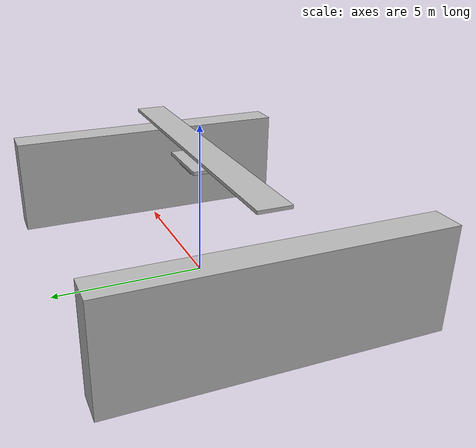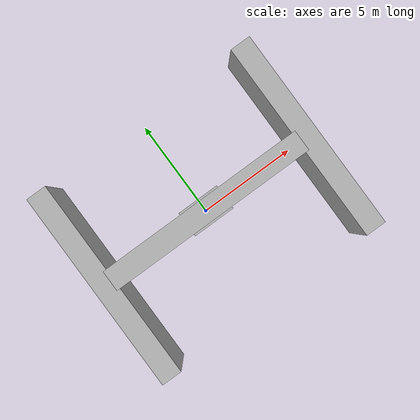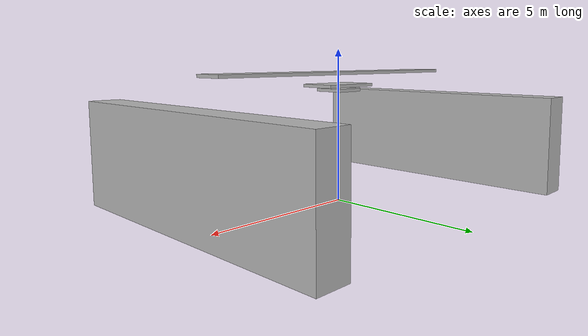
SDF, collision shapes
<?xml version='1.0'?>
<sdf version='1.4'>
  <model name="H_beam">
    <static>false</static>

    <self_collide>true</self_collide>

    <link name="world_fix">
    </link> <!-- I needed to close the link tag -->
    <joint name ="lwb_world" type="fixed">
        <parent>world</parent>
        <child>left_wall_beam</child> <!-- put here the name of the base link -->
    </joint> <!-- close the joint tag -->

    <joint name ="rwb_world" type="fixed">
        <parent>world</parent>
        <child>right_wall_beam</child> <!-- put here the name of the base link -->
    </joint> <!-- close the joint tag -->

    <link name='left_wall_beam'>
      <pose> 5.5 0 0 0 0 0</pose>

      <collision name='collision_lwb'>
        <pose> 0 0 1.75 0 0 0</pose>
        <geometry>
          <box>
            <size> 1 10 3.3 </size>
          </box>
        </geometry>
      </collision>

      <visual name='visual_lwb'>
        <geometry>
          <mesh>
            <uri>model://my_robot/meshes/support_arch_v2.stl</uri>
            <scale>0.001 0.001 0.001</scale>
          </mesh>
        </geometry>
      </visual>
    </link>

    <link name='right_wall_beam'>
      <pose> -5.5 0 0 0 0 0</pose>

      <collision name='collision_rwb'>
        <pose> 0 0 1.75 0 0 0</pose>
        <geometry>
          <box>
            <size> 1 10 3.3 </size>
          </box>
        </geometry>
      </collision>

      <visual name='visual_rwb'>
        <geometry>
          <mesh>
            <uri>model://my_robot/meshes/support_arch_v2.stl</uri>
            <scale>0.001 0.001 0.001</scale>
          </mesh>
        </geometry>
      </visual>
    </link>

    <link name='h_beam'>
      <pose> 0 -0.5 5 0 0 0</pose>

      <collision name='collision_hb'>
        <pose> 0 0.5 -0.75 0 0 0</pose>
        <geometry>
          <box>
            <size> 10 1 0.1 </size>
          </box>
        </geometry>
      </collision>

      <visual name='visual_hb'>
        <geometry>
          <mesh>
            <uri>model://my_robot/meshes/H-Beam_v3.stl</uri>
            <scale>1 1 1</scale>
          </mesh>
        </geometry>
      </visual>
    </link>

    <joint type="prismatic" name="h_beam_hinge">
      <pose>0 0 0 0 0 0</pose>
      <child>h_beam</child>
      <parent>right_wall_beam</parent>
      <axis>
        <xyz>0 1 0</xyz>
        <limit>
          <lower> -4 </lower>
          <upper> 4 </upper>
        </limit>
      </axis>
    </joint>

    <joint type="prismatic" name="h_beam_hinge_l">
      <pose>0 0 0 0 0 0</pose>
      <child>h_beam</child>
      <parent>left_wall_beam</parent>
      <axis>
        <xyz>0 1 0</xyz>
        <limit>
          <lower> -4 </lower>
          <upper> 4 </upper>
        </limit>
      </axis>
    </joint>

    <link name='trolly'>
      <pose> 0 0 3.8 0 0 1.57057</pose>

      <collision name='collision_tr'>
        <pose> 0 0 0.05 0 0 0</pose>
        <geometry>
          <box>
            <size> 1.2 2 0.1 </size>
          </box>
        </geometry>
      </collision>

      <visual name='visual_tr'>
        <geometry>
          <mesh>
            <uri>model://my_robot/meshes/trolly_v2.stl</uri>
            <scale>0.01 0.01 0.01</scale>
          </mesh>
        </geometry>
      </visual>
    </link>

    <joint type="prismatic" name="trolly_hinge">
      <pose>0 0.1 0 0 0 0</pose>
      <child>trolly</child>
      <parent>h_beam</parent>
      <axis>
        <xyz>1 0 0</xyz>
        <limit>
          <lower> -4 </lower>
          <upper> 4 </upper>
        </limit>
      </axis>
    </joint>

    <link name='crane'>
      <pose> 0 0 3.7 0 0 0</pose>

      <collision name='collision_crane'>
        <geometry>
          <box>
            <size> 1 1 0.1 </size>
          </box>
        </geometry>
      </collision>

      <visual name='visual_crane'>
        <geometry>
          <box>
            <size> 1 1 0.1 </size>
          </box>
        </geometry>
      </visual>
    </link>

    <joint type="prismatic" name="crane_hinge">
      <pose>0 0 0 0 0 0</pose>
      <child>crane</child>
      <parent>trolly</parent>
      <axis>
        <xyz>0 0 1</xyz>
        <dynamics>
          <friction> 10 </friction>

        </dynamics>
        <limit>
          <lower> -2 </lower>
          <upper> 0 </upper>
        </limit>
      </axis>
    </joint>

  </model>
</sdf>
